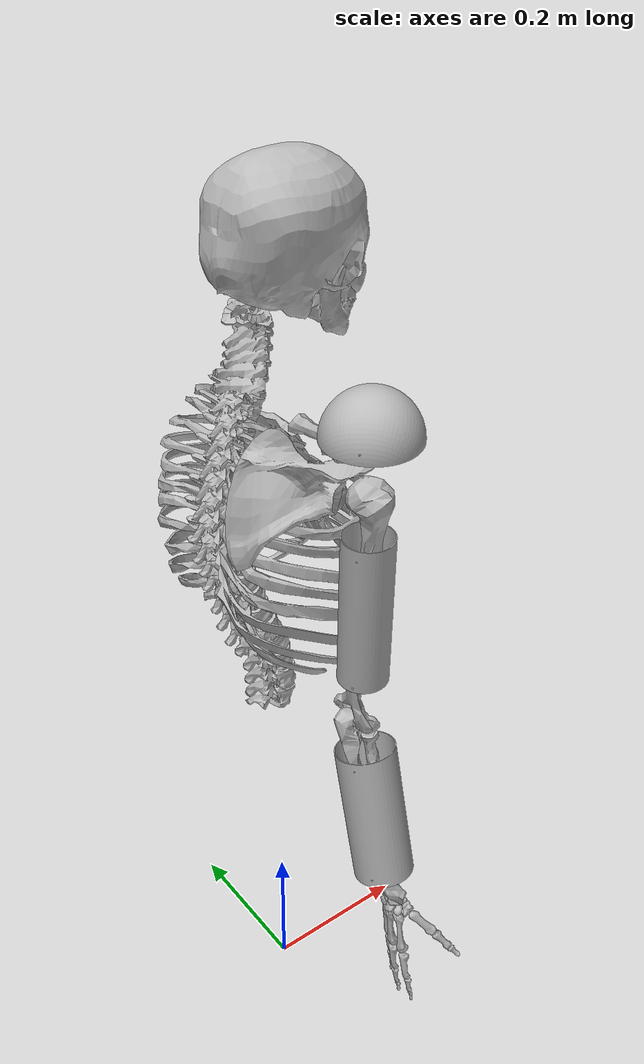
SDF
<?xml version="1.0" ?>
<sdf version="1.6">
  <model name="ExoSkeleton">
    <model name="ExoSuit">

      <link name="upperArm">

        <self_collide>false</self_collide>

        <pose frame="">-2.2409766979267137e-08 -0.1657005154670546 0.8534292924848815 0.0 -0.0 0.0</pose>

        <inertial>

          <pose frame="">0.0 0.0 0.0 0 0 0</pose>

          <mass>0.035365042126382314</mass>

          <inertia>

            <ixx>0.026848668803308773</ixx>

            <ixy>-1.3187678727932806e-10</ixy>

            <ixz>5.0011004972102685e-05</ixz>

            <iyy>0.025877650145656617</iyy>

            <iyz>6.783687854117204e-10</iyz>

            <izz>0.0009968080150968607</izz>

          </inertia>

        </inertial>

        <visual name="upperArm_visual">

          <geometry>

            <mesh>

              <uri>model://ExoSuit/meshes/CAD/upperArm.stl</uri>

              <scale>0.001 0.001 0.001</scale>

            </mesh>

          </geometry>

        </visual>

      </link>

      <link name="lowerArm">

        <self_collide>false</self_collide>

        <pose frame="">-5.60883944359284e-07 -0.19643676538168076 0.5886500860733177 0.0 -0.0 0.0</pose>

        <inertial>

          <pose frame="">0.0 0.0 0.0 0 0 0</pose>

          <mass>0.039028201646434786</mass>

          <inertia>

            <ixx>0.015146765092907442</ixx>

            <ixy>-4.303699452046228e-09</ixy>

            <ixz>4.495256601356099e-05</ixz>

            <iyy>0.013636010932526574</iyy>

            <iyz>1.1960276033873285e-08</iyz>

            <izz>0.0015571994124995439</izz>

          </inertia>

        </inertial>

        <visual name="lowerArm_visual">

          <geometry>

            <mesh>

              <uri>model://ExoSuit/meshes/CAD/lowerArm.stl</uri>

              <scale>0.001 0.001 0.001</scale>

            </mesh>

          </geometry>

        </visual>

      </link>

      <link name="shoulder">

        <self_collide>false</self_collide>

        <pose frame="">-7.908049805587664e-07 -0.16397633036233888 1.0812802560574826 0.0 -0.0 0.0</pose>

        <inertial>

          <pose frame="">0.0 0.0 0.0 0 0 0</pose>

          <mass>0.01630269246947046</mass>

          <inertia>

            <ixx>0.019515568502845942</ixx>

            <ixy>-1.9966507921631573e-09</ixy>

            <ixz>2.8905394265479922e-05</ixz>

            <iyy>0.019077204732443745</iyy>

            <iyz>1.3722221878786912e-08</iyz>

            <izz>0.00046497426005389167</izz>

          </inertia>

        </inertial>

        <visual name="shoulder_visual">

          <geometry>

            <mesh>

              <uri>model://ExoSuit/meshes/CAD/shoulder.stl</uri>

              <scale>0.001 0.001 0.001</scale>

            </mesh>

          </geometry>

        </visual>

      </link>

      <joint name="offset" type="fixed">

        <parent>world</parent>

        <child>shoulder</child>

      </joint>
      <plugin filename="libgazebo_ros_muscle_interface.so" name="muscle_interface_plugin"/>
      <muscles>model://ExoSuit/muscles.osim</muscles>
      <pose frame="">-0.007648 -0.001248 -0.100006 0 -0 0</pose>
    </model>

    <model name="arm26">

      <muscles>model://arm26/muscles.osim</muscles>

      <link name="base">

        <pose frame="">0.0 0.0 0.8 1.5708 0.0 0.0</pose>

        <inertial>

          <mass>0.0001</mass>

          <pose>0.0 0.0 0.0 0.0 0.0 0.0</pose>

          <inertia>

            <ixx>0</ixx>

            <ixy>0</ixy>

            <ixz>0</ixz>

            <iyy>0</iyy>

            <iyz>0</iyz>

            <izz>0</izz>

          </inertia>

        </inertial>

        <visual name="ground_ribs">

          <pose> -0 0 -0 0 0 0</pose>

          <geometry>

            <mesh>

              <uri>model://arm26/meshes/visuals/ground_ribs.dae</uri>

              <scale> 1 1 1</scale>

            </mesh>

          </geometry>

        </visual>

        <visual name="ground_spine">

          <pose> -0 0 -0 0 0 0</pose>

          <geometry>

            <mesh>

              <uri>model://arm26/meshes/visuals/ground_spine.dae</uri>

              <scale> 1 1 1</scale>

            </mesh>

          </geometry>

        </visual>

        <visual name="ground_skull">

          <pose> -0 0 -0 0 0 0</pose>

          <geometry>

            <mesh>

              <uri>model://arm26/meshes/visuals/ground_skull.dae</uri>

              <scale> 1 1 1</scale>

            </mesh>

          </geometry>

        </visual>

        <visual name="ground_jaw">

          <pose> -0 0 -0 0 0 0</pose>

          <geometry>

            <mesh>

              <uri>model://arm26/meshes/visuals/ground_jaw.dae</uri>

              <scale> 1 1 1</scale>

            </mesh>

          </geometry>

        </visual>

        <visual name="ground_r_clavicle">

          <pose> -0 0 -0 0 0 0</pose>

          <geometry>

            <mesh>

              <uri>model://arm26/meshes/visuals/ground_r_clavicle.dae</uri>

              <scale> 1 1 1</scale>

            </mesh>

          </geometry>

        </visual>

        <visual name="ground_r_scapula">

          <pose> -0 0 -0 0 0 0</pose>

          <geometry>

            <mesh>

              <uri>model://arm26/meshes/visuals/ground_r_scapula.dae</uri>

              <scale> 1 1 1</scale>

            </mesh>

          </geometry>

        </visual>

      </link>

      <link name="r_humerus">

        <pose frame="">-0.017545 -0.17 0.793 1.5708 0.0 0.0</pose>

        <inertial>

          <mass>1.864572</mass>

          <pose>0.0 0.0 0.0 0.0 0.0 0.0</pose>

          <inertia>

            <ixx>0.01481</ixx>

            <ixy>0</ixy>

            <ixz>0</ixz>

            <iyy>0.004551</iyy>

            <iyz>0</iyz>

            <izz>0.013193</izz>

          </inertia>

        </inertial>

        <visual name="arm_r_humerus">

          <pose> -0 0 -0 0 0 0</pose>

          <geometry>

            <mesh>

              <uri>model://arm26/meshes/visuals/arm_r_humerus.dae</uri>

              <scale> 1 1 1</scale>

            </mesh>

          </geometry>

        </visual>

      </link>

      <link name="r_ulna_radius_hand">

        <pose frame="">-0.011445 -0.1577 0.5026 1.5708 0.0 0.0</pose>

        <inertial>

          <mass>1.534315</mass>

          <pose>0.0 0.0 0.0 0.0 0.0 0.0</pose>

          <inertia>

            <ixx>0.019281</ixx>

            <ixy>0</ixy>

            <ixz>0</ixz>

            <iyy>0.001571</iyy>

            <iyz>0</iyz>

            <izz>0.020062</izz>

          </inertia>

        </inertial>

        <visual name="arm_r_ulna">

          <pose> -0 0 -0 0 0 0</pose>

          <geometry>

            <mesh>

              <uri>model://arm26/meshes/visuals/arm_r_ulna.dae</uri>

              <scale> 1 1 1</scale>

            </mesh>

          </geometry>

        </visual>

        <visual name="arm_r_radius">

          <pose> -0 0 -0 0 0 0</pose>

          <geometry>

            <mesh>

              <uri>model://arm26/meshes/visuals/arm_r_radius.dae</uri>

              <scale> 1 1 1</scale>

            </mesh>

          </geometry>

        </visual>

        <visual name="arm_r_lunate">

          <pose> -0 0 -0 0 0 0</pose>

          <geometry>

            <mesh>

              <uri>model://arm26/meshes/visuals/arm_r_lunate.dae</uri>

              <scale> 1 1 1</scale>

            </mesh>

          </geometry>

        </visual>

        <visual name="arm_r_scaphoid">

          <pose> -0 0 -0 0 0 0</pose>

          <geometry>

            <mesh>

              <uri>model://arm26/meshes/visuals/arm_r_scaphoid.dae</uri>

              <scale> 1 1 1</scale>

            </mesh>

          </geometry>

        </visual>

        <visual name="arm_r_pisiform">

          <pose> -0 0 -0 0 0 0</pose>

          <geometry>

            <mesh>

              <uri>model://arm26/meshes/visuals/arm_r_pisiform.dae</uri>

              <scale> 1 1 1</scale>

            </mesh>

          </geometry>

        </visual>

        <visual name="arm_r_triquetrum">

          <pose> -0 0 -0 0 0 0</pose>

          <geometry>

            <mesh>

              <uri>model://arm26/meshes/visuals/arm_r_triquetrum.dae</uri>

              <scale> 1 1 1</scale>

            </mesh>

          </geometry>

        </visual>

        <visual name="arm_r_capitate">

          <pose> -0 0 -0 0 0 0</pose>

          <geometry>

            <mesh>

              <uri>model://arm26/meshes/visuals/arm_r_capitate.dae</uri>

              <scale> 1 1 1</scale>

            </mesh>

          </geometry>

        </visual>

        <visual name="arm_r_trapezium">

          <pose> -0 0 -0 0 0 0</pose>

          <geometry>

            <mesh>

              <uri>model://arm26/meshes/visuals/arm_r_trapezium.dae</uri>

              <scale> 1 1 1</scale>

            </mesh>

          </geometry>

        </visual>

        <visual name="arm_r_trapezoid">

          <pose> -0 0 -0 0 0 0</pose>

          <geometry>

            <mesh>

              <uri>model://arm26/meshes/visuals/arm_r_trapezoid.dae</uri>

              <scale> 1 1 1</scale>

            </mesh>

          </geometry>

        </visual>

        <visual name="arm_r_hamate">

          <pose> -0 0 -0 0 0 0</pose>

          <geometry>

            <mesh>

              <uri>model://arm26/meshes/visuals/arm_r_hamate.dae</uri>

              <scale> 1 1 1</scale>

            </mesh>

          </geometry>

        </visual>

        <visual name="arm_r_1mc">

          <pose> -0 0 -0 0 0 0</pose>

          <geometry>

            <mesh>

              <uri>model://arm26/meshes/visuals/arm_r_1mc.dae</uri>

              <scale> 1 1 1</scale>

            </mesh>

          </geometry>

        </visual>

        <visual name="arm_r_2mc">

          <pose> -0 0 -0 0 0 0</pose>

          <geometry>

            <mesh>

              <uri>model://arm26/meshes/visuals/arm_r_2mc.dae</uri>

              <scale> 1 1 1</scale>

            </mesh>

          </geometry>

        </visual>

        <visual name="arm_r_3mc">

          <pose> -0 0 -0 0 0 0</pose>

          <geometry>

            <mesh>

              <uri>model://arm26/meshes/visuals/arm_r_3mc.dae</uri>

              <scale> 1 1 1</scale>

            </mesh>

          </geometry>

        </visual>

        <visual name="arm_r_4mc">

          <pose> -0 0 -0 0 0 0</pose>

          <geometry>

            <mesh>

              <uri>model://arm26/meshes/visuals/arm_r_4mc.dae</uri>

              <scale> 1 1 1</scale>

            </mesh>

          </geometry>

        </visual>

        <visual name="arm_r_5mc">

          <pose> -0 0 -0 0 0 0</pose>

          <geometry>

            <mesh>

              <uri>model://arm26/meshes/visuals/arm_r_5mc.dae</uri>

              <scale> 1 1 1</scale>

            </mesh>

          </geometry>

        </visual>

        <visual name="arm_r_thumbprox">

          <pose> -0 0 -0 0 0 0</pose>

          <geometry>

            <mesh>

              <uri>model://arm26/meshes/visuals/arm_r_thumbprox.dae</uri>

              <scale> 1 1 1</scale>

            </mesh>

          </geometry>

        </visual>

        <visual name="arm_r_thumbdist">

          <pose> -0 0 -0 0 0 0</pose>

          <geometry>

            <mesh>

              <uri>model://arm26/meshes/visuals/arm_r_thumbdist.dae</uri>

              <scale> 1 1 1</scale>

            </mesh>

          </geometry>

        </visual>

        <visual name="arm_r_2proxph">

          <pose> -0 0 -0 0 0 0</pose>

          <geometry>

            <mesh>

              <uri>model://arm26/meshes/visuals/arm_r_2proxph.dae</uri>

              <scale> 1 1 1</scale>

            </mesh>

          </geometry>

        </visual>

        <visual name="arm_r_2midph">

          <pose> -0 0 -0 0 0 0</pose>

          <geometry>

            <mesh>

              <uri>model://arm26/meshes/visuals/arm_r_2midph.dae</uri>

              <scale> 1 1 1</scale>

            </mesh>

          </geometry>

        </visual>

        <visual name="arm_r_2distph">

          <pose> -0 0 -0 0 0 0</pose>

          <geometry>

            <mesh>

              <uri>model://arm26/meshes/visuals/arm_r_2distph.dae</uri>

              <scale> 1 1 1</scale>

            </mesh>

          </geometry>

        </visual>

        <visual name="arm_r_3proxph">

          <pose> -0 0 -0 0 0 0</pose>

          <geometry>

            <mesh>

              <uri>model://arm26/meshes/visuals/arm_r_3proxph.dae</uri>

              <scale> 1 1 1</scale>

            </mesh>

          </geometry>

        </visual>

        <visual name="arm_r_3midph">

          <pose> -0 0 -0 0 0 0</pose>

          <geometry>

            <mesh>

              <uri>model://arm26/meshes/visuals/arm_r_3midph.dae</uri>

              <scale> 1 1 1</scale>

            </mesh>

          </geometry>

        </visual>

        <visual name="arm_r_3distph">

          <pose> -0 0 -0 0 0 0</pose>

          <geometry>

            <mesh>

              <uri>model://arm26/meshes/visuals/arm_r_3distph.dae</uri>

              <scale> 1 1 1</scale>

            </mesh>

          </geometry>

        </visual>

        <visual name="arm_r_4proxph">

          <pose> -0 0 -0 0 0 0</pose>

          <geometry>

            <mesh>

              <uri>model://arm26/meshes/visuals/arm_r_4proxph.dae</uri>

              <scale> 1 1 1</scale>

            </mesh>

          </geometry>

        </visual>

        <visual name="arm_r_4midph">

          <pose> -0 0 -0 0 0 0</pose>

          <geometry>

            <mesh>

              <uri>model://arm26/meshes/visuals/arm_r_4midph.dae</uri>

              <scale> 1 1 1</scale>

            </mesh>

          </geometry>

        </visual>

        <visual name="arm_r_4distph">

          <pose> -0 0 -0 0 0 0</pose>

          <geometry>

            <mesh>

              <uri>model://arm26/meshes/visuals/arm_r_4distph.dae</uri>

              <scale> 1 1 1</scale>

            </mesh>

          </geometry>

        </visual>

        <visual name="arm_r_5proxph">

          <pose> -0 0 -0 0 0 0</pose>

          <geometry>

            <mesh>

              <uri>model://arm26/meshes/visuals/arm_r_5proxph.dae</uri>

              <scale> 1 1 1</scale>

            </mesh>

          </geometry>

        </visual>

        <visual name="arm_r_5midph">

          <pose> -0 0 -0 0 0 0</pose>

          <geometry>

            <mesh>

              <uri>model://arm26/meshes/visuals/arm_r_5midph.dae</uri>

              <scale> 1 1 1</scale>

            </mesh>

          </geometry>

        </visual>

        <visual name="arm_r_5distph">

          <pose> -0 0 -0 0 0 0</pose>

          <geometry>

            <mesh>

              <uri>model://arm26/meshes/visuals/arm_r_5distph.dae</uri>

              <scale> 1 1 1</scale>

            </mesh>

          </geometry>

        </visual>

      </link>

      <joint name="offset" type="fixed">

        <parent>world</parent>

        <child>base</child>

      </joint>

      <joint name="r_shoulder" type="revolute">

        <parent>base</parent>

        <child>r_humerus</child>

        <axis>

          <xyz>0 0 1</xyz>

          <dynamics>

            <damping>1.e-6</damping>

          </dynamics>

          <limit>

            <lower>-1.57079633</lower>

            <upper>3.14159265</upper>

            <stiffness>100</stiffness>

            <dissipation>1.e-2</dissipation>

          </limit>

        </axis>

      </joint>

      <joint name="r_elbow" type="revolute">

        <parent>r_humerus</parent>

        <child>r_ulna_radius_hand</child>

        <axis>

          <xyz>0 0 1</xyz>

          <dynamics>

            <damping>1.e-6</damping>

          </dynamics>

          <limit>

            <lower>0</lower>

            <upper>2.26892803</upper>

            <stiffness>100</stiffness>

            <dissipation>1.e-2</dissipation>

          </limit>

        </axis>

      </joint>

      <plugin filename="libgazebo_ros_muscle_interface.so" name="muscle_interface_plugin"/>

      <pose frame="">0.007648 0.001248 0.100007 0 -0 0</pose>
    </model>

    <joint name="base_JOINT_3" type="fixed">
      <parent>arm26::base</parent>
      <child>ExoSuit::shoulder</child>
      <pose frame="">0 0 0 0 -0 0</pose>
      <physics>
        <ode>
          <limit>
            <cfm>0</cfm>
            <erp>0.2</erp>
          </limit>
          <suspension>
            <cfm>0</cfm>
            <erp>0.2</erp>
          </suspension>
        </ode>
      </physics>
    </joint>
    <joint name="r_humerus_JOINT_4" type="fixed">
      <parent>arm26::r_humerus</parent>
      <child>ExoSuit::upperArm</child>
      <pose frame="">0 0 0 0 -0 0</pose>
      <physics>
        <ode>
          <limit>
            <cfm>0</cfm>
            <erp>0.2</erp>
          </limit>
          <suspension>
            <cfm>0</cfm>
            <erp>0.2</erp>
          </suspension>
        </ode>
      </physics>
    </joint>
    <joint name="r_ulna_radius_hand_JOINT_5" type="fixed">
      <parent>arm26::r_ulna_radius_hand</parent>
      <child>ExoSuit::lowerArm</child>
      <pose frame="">0 0 0 0 -0 0</pose>
      <physics>
        <ode>
          <limit>
            <cfm>0</cfm>
            <erp>0.2</erp>
          </limit>
          <suspension>
            <cfm>0</cfm>
            <erp>0.2</erp>
          </suspension>
        </ode>
      </physics>
    </joint>
    <static>0</static>
    <allow_auto_disable>1</allow_auto_disable>
  </model>
</sdf>
